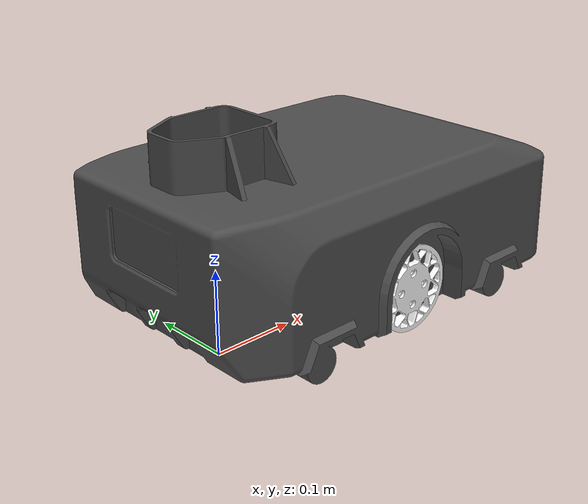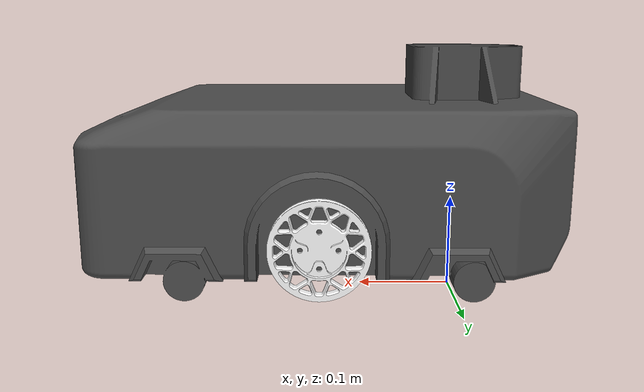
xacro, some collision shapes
<?xml version="1.0"?>
<!-- Basic differential drive mobile base -->
<!--
Copied and modified from ROS1 example -
https://github.com/ros-simulation/gazebo_ros_demos/blob/kinetic-devel/robolaunch_diffbot_description/urdf/diffbot.xacro
-->
<robot xmlns:xacro="http://www.ros.org/wiki/xacro" name="diffdrive_robot">
  <xacro:arg name="use_sim" default="false" />

  <!-- Enable setting arguments from the launch file -->
  <xacro:arg name="use_fake_hardware" default="false" />
  <xacro:arg name="fake_sensor_commands" default="false" />
  <xacro:arg name="prefix" default="" />

  <xacro:include filename="$(find robolaunch_diffbot_description)/urdf/robot_core.xacro" />
<xacro:generic_laser>
        <xacro:insert_block name="laser_pose" />
    </xacro:generic_laser>
  <!-- Import all Gazebo-customization elements, including Gazebo colors -->
  <!-- Import Rviz colors -->
  <!-- Import diffbot ros2_control description -->
  <xacro:include filename="$(find robolaunch_diffbot_description)/ros2_control/diffbot_system.ros2_control.xacro" />

  <xacro:diffbot_system
    name="DiffBotSystem" prefix="$(arg prefix)"
    use_fake_hardware="$(arg use_fake_hardware)"
    fake_sensor_commands="$(arg fake_sensor_commands)"/>

</robot>

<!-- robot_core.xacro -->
<robot xmlns:xacro="http://www.ros.org/wiki/xacro" >

    <xacro:include filename="inertial_macros.xacro"/>
    <xacro:include filename="$(find robolaunch_diffbot_description)/sensors/generic_laser.urdf.xacro" />
    <xacro:include filename="$(find robolaunch_diffbot_description)/urdf/properties.urdf.xacro" />

   <xacro:property name="scale_ratio" value="0.0015" />
   <link name="base_footprint"/>

    <material name="white">
        <color rgba="1 1 1 1" />
    </material>

    <material name="orange">
        <color rgba="1 0.3 0.1 1"/>
    </material>

    <material name="blue">
        <color rgba="0.2 0.2 1 1"/>
    </material>

    <material name="black">
        <color rgba="0 0 0 1"/>
    </material>
  <material name="gray">
        <color rgba="0.3 0.3 0.3 1"/>
    </material>

    <!-- BASE LINK -->

    <link name="base_link">

    </link>

    <joint name="base_to_footprint" type="fixed">
      <parent link="base_footprint"/>
      <child link="base_link"/>
      <origin xyz="0 0 0.035" rpy="0 0 0"/>
    </joint>

    <!-- CHASSIS LINK -->

    <joint name="chassis_joint" type="fixed">
        <parent link="base_link"/>
        <child link="chassis"/>
        <origin xyz="-0.1 0 0"/>
    </joint>

    <link name="chassis">
        <visual>
            <origin xyz="0 0.15 0" rpy="1.57 0 0"/>
            <geometry>
                <mesh scale="${scale_ratio} ${scale_ratio} ${scale_ratio}" filename="file://$(find robolaunch_diffbot_description)/urdf/meshes/body.stl"/>
            </geometry>
            <material name="gray"/>
        </visual>
        <collision>
            <origin xyz="0.25 0 0.075"/>
            <geometry>
                <box size="0.5 0.3 0.15"/>
            </geometry>
        </collision>
        <xacro:inertial_box mass="0.5" x="0.3" y="0.3" z="0.15">
            <origin xyz="0.15 0 0.075" rpy="0 0 0"/>
        </xacro:inertial_box>
    </link>
    <gazebo reference="chassis">
    <material>Gazebo/DarkGrey</material>
      <mu1>0.2</mu1>
      <mu2>0.2</mu2>

    </gazebo>

    <!-- LEFT WHEEL LINK -->

    <joint name="left_wheel_joint" type="continuous">
        <parent link="base_link"/>
        <child link="left_wheel"/>
        <origin xyz="0.145 0.14 0.048" rpy="-${pi/2} 0 0" />
        <axis xyz="0 0 1"/>
    </joint>

    <link name="right_wheel">
        <visual>
            <geometry>
                <mesh scale="${scale_ratio} ${scale_ratio} ${scale_ratio}" filename="file://$(find robolaunch_diffbot_description)/urdf/meshes/wheel.stl" />
            </geometry>
            <material name="white"/>
            <origin xyz="-0.049 -0.049 0" rpy="0 ${pi/2} 0" />

        </visual>
        <collision>
            <geometry>
                <cylinder radius="0.05" length="0.04"/>
            </geometry>
        </collision>
        <xacro:inertial_cylinder mass="0.1" length="0.04" radius="0.05">
            <origin xyz="0 0 0" rpy="0 0 0"/>
        </xacro:inertial_cylinder>
    </link>
    <gazebo reference="left_wheel">
    <material>Gazebo/White</material>
    </gazebo>
    <!-- RIGHT WHEEL LINK -->

    <joint name="right_wheel_joint" type="continuous">
        <parent link="base_link"/>
        <child link="right_wheel"/>
        <origin xyz="0.145 -0.14 0.048" rpy="-${pi/2} 0 0" />
        <axis xyz="0 0 1"/>
    </joint>

    <link name="left_wheel">
        <visual>
            <geometry>
                <mesh scale="${scale_ratio} ${scale_ratio} ${scale_ratio}" filename="file://$(find robolaunch_diffbot_description)/urdf/meshes/wheel.stl" />
            </geometry>
            <origin xyz="-0.049 -0.049 0" rpy="0 ${pi/2} 0" />
            <material name="white"/>
        </visual>
        <collision>
            <geometry>
                <cylinder radius="0.05" length="0.04"/>
            </geometry>
        </collision>
        <xacro:inertial_cylinder mass="0.1" length="0.04" radius="0.05">
            <origin xyz="0 0 0" rpy="0 0 0"/>
        </xacro:inertial_cylinder>
    </link>
    <gazebo reference="right_wheel">
    <material>Gazebo/White</material>
    </gazebo>

    <!-- CASTER WHEEL LINK -->

</robot>

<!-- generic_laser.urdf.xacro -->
<robot xmlns:xacro="http://ros.org/wiki/xacro">
  <xacro:include filename="$(find robolaunch_diffbot_description)/sensors/laser.urdf.xacro" />

  <xacro:macro name="generic_laser" params="*origin">
    <xacro:laser
      update_rate="10"
      ray_count="360"
      min_angle="-3.1416"
      max_angle="3.1416"
      min_range="0.08"
      max_range="12.0"
      frame_id="laser"
      topic_name="scan"
    >
      <xacro:insert_block name="origin" />
    </xacro:laser>
  </xacro:macro>

  <xacro:macro name="generic_base_laser" params="*origin">
    <xacro:laser
      update_rate="10"
      ray_count="360"
      min_angle="-3.1416"
      max_angle="3.1416"
      min_range="0.21"
      max_range="5.5"
      frame_id="base_laser"
      topic_name="base/scan"
    >
      <xacro:insert_block name="origin" />
    </xacro:laser>
  </xacro:macro>
</robot>

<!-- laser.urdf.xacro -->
<robot xmlns:xacro="http://ros.org/wiki/xacro">
  <xacro:property name="M_PI" value="3.1415926535897931" />
  <xacro:macro name="laser" params="*origin update_rate ray_count min_angle max_angle min_range max_range frame_id topic_name">
    <link name="${frame_id}">
      <visual>
        <origin xyz="-0.05 0.03 -0.02" rpy="1.57 0 0"/>
        <geometry>
                <mesh scale="${scale_ratio} ${scale_ratio} ${scale_ratio}" filename="file://$(find robolaunch_diffbot_description)/urdf/meshes/lidar.stl" />
        </geometry>
        <material name="green">
            <color rgba="0.003 0.639 0.223 1.0"/>
        </material>
      </visual>
      <collision>
        <origin xyz="0 0 -0.025" rpy="0 0 0"/>
        <geometry>
          <cylinder radius="0.0375" length="0.05"/>
        </geometry>
      </collision>

      <inertial>
        <origin xyz="0 0 0" rpy="0 0 0"/>
        <mass value="0.1"/>
        <inertia ixx="${(2/5) * 0.1 * (0.0375 * 0.0375)}" ixy="0" ixz="0"
                 iyy="${(2/5) * 0.1 * (0.0375 * 0.0375)}" iyz="0"
                 izz="${(2/5) * 0.1 * (0.0375 * 0.0375)}" />
      </inertial>
    </link>

    <gazebo reference="${frame_id}">
      <visual>
        <material>
          <ambient>0.003 0.639 0.223 1.0</ambient>
          <diffuse>0.003 0.639 0.223 1.0</diffuse>
          <specular>0.003 0.639 0.223 1.0</specular>
          <emissive>0.0 0.0 0.0 0.0</emissive>
        </material>
      </visual>
    </gazebo>

    <joint name="${frame_id}_to_base_link" type="fixed">
      <parent link="base_link"/>
      <child link="${frame_id}"/>
      <xacro:insert_block name="origin" />
    </joint>

    <gazebo reference="${frame_id}">
      <sensor type="ray" name="${frame_id}_head_hokuyo_sensor">
        <always_on>true</always_on>
        <update_rate>${update_rate}</update_rate>
        <pose>0 0 0 0 0 0</pose>
        <visualize>false</visualize>
        <ray>
          <scan>
            <horizontal>
              <samples>${ray_count}</samples>
              <resolution>1</resolution>
              <min_angle>${min_angle}</min_angle>
              <max_angle>${max_angle}</max_angle>
            </horizontal>
          </scan>
          <range>
            <min>${min_range}</min>
            <max>${max_range}</max>
            <resolution>0.01</resolution>
          </range>
        </ray>
        <plugin name="${frame_id}_gazebo_ros_head_hokuyo_controller" filename="libgazebo_ros_ray_sensor.so">
          <ros>
            <remapping>~/out:=${topic_name}</remapping>
          </ros>
          <output_type>sensor_msgs/LaserScan</output_type>
          <alwaysOn>true</alwaysOn>
          <updateRate>${update_rate}</updateRate>
          <topicName>${topic_name}</topicName>
          <frame_name>${frame_id}</frame_name>
          <output_type>sensor_msgs/LaserScan</output_type>
        </plugin>
      </sensor>
    </gazebo>
  </xacro:macro>
</robot>
